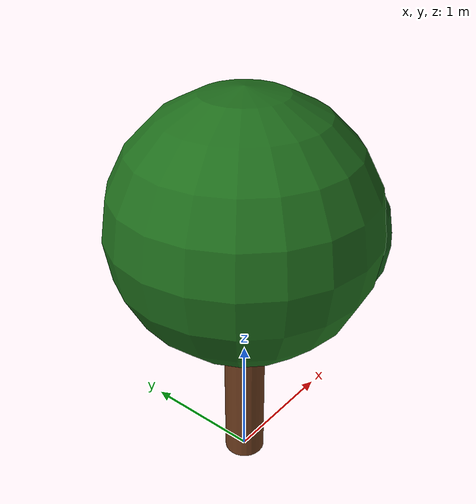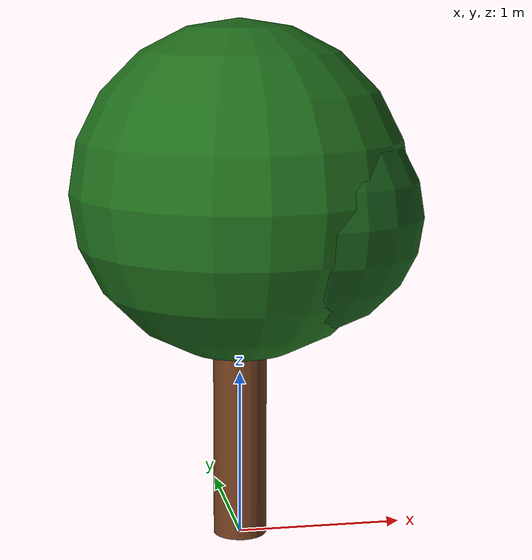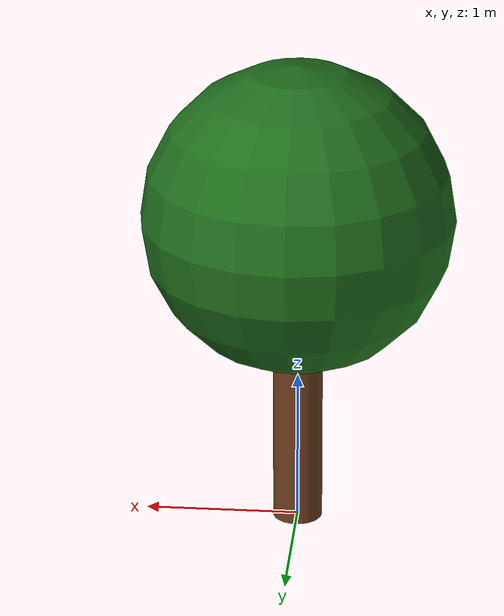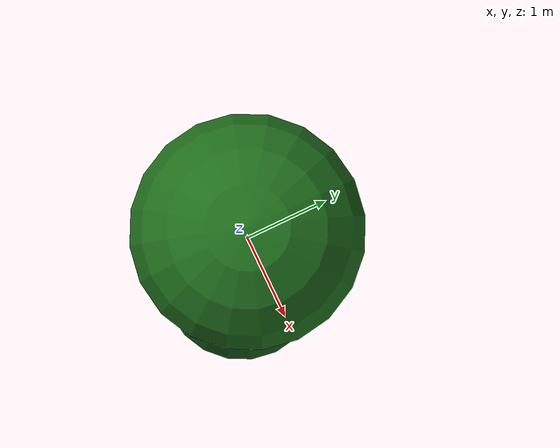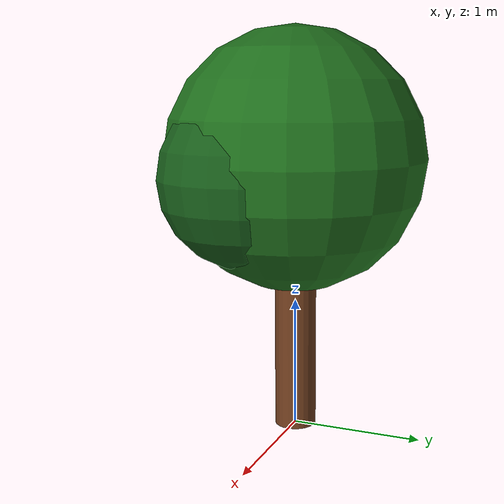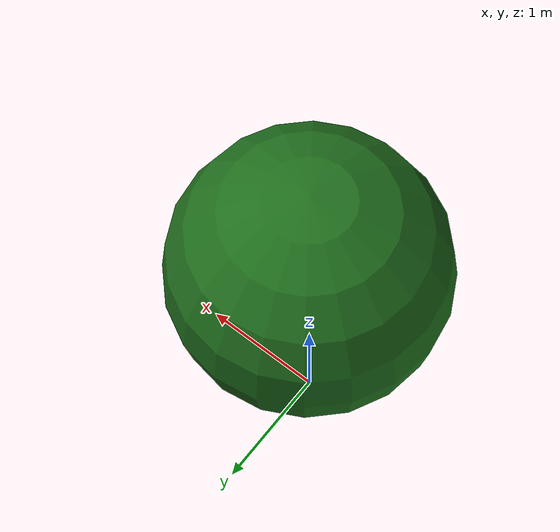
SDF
<?xml version="1.0"?>
<sdf version="1.6">
  <model name="orchard_tree_small">
    <static>true</static>
    <link name="trunk">
      <pose>0 0 0.9 0 0 0</pose>
      <collision name="collision">
        <geometry>
          <cylinder>
            <radius>0.16</radius>
            <length>1.8</length>
          </cylinder>
        </geometry>
      </collision>
      <visual name="visual">
        <geometry>
          <cylinder>
            <radius>0.16</radius>
            <length>1.8</length>
          </cylinder>
        </geometry>
        <material>
          <ambient>0.34 0.18 0.08 1</ambient>
          <diffuse>0.42 0.23 0.11 1</diffuse>
        </material>
      </visual>
    </link>
    <link name="crown_main">
      <pose>0 0 2.10 0 0 0</pose>
      <collision name="collision">
        <geometry>
          <sphere>
            <radius>1.00</radius>
          </sphere>
        </geometry>
      </collision>
      <visual name="visual">
        <geometry>
          <sphere>
            <radius>1.00</radius>
          </sphere>
        </geometry>
        <material>
          <ambient>0.08 0.30 0.08 1</ambient>
          <diffuse>0.12 0.43 0.11 1</diffuse>
        </material>
      </visual>
    </link>
    <link name="crown_offset">
      <pose>0.35 -0.22 1.98 0 0 0</pose>
      <visual name="visual">
        <geometry>
          <sphere>
            <radius>0.68</radius>
          </sphere>
        </geometry>
        <material>
          <ambient>0.05 0.24 0.07 1</ambient>
          <diffuse>0.09 0.36 0.10 1</diffuse>
        </material>
      </visual>
    </link>
  </model>
</sdf>
